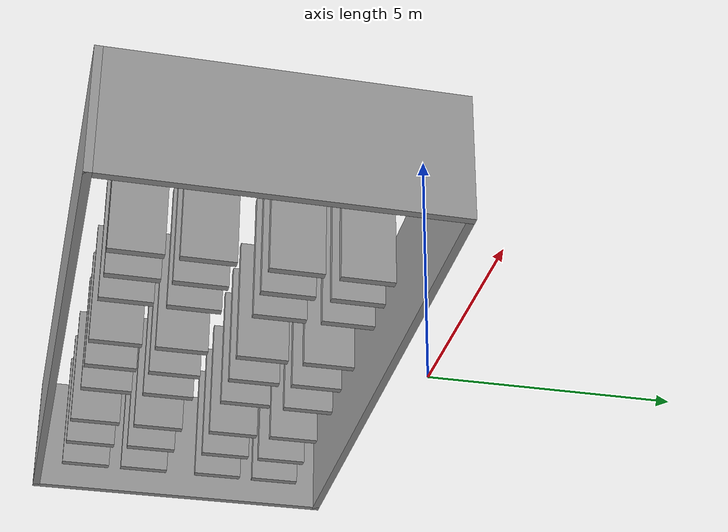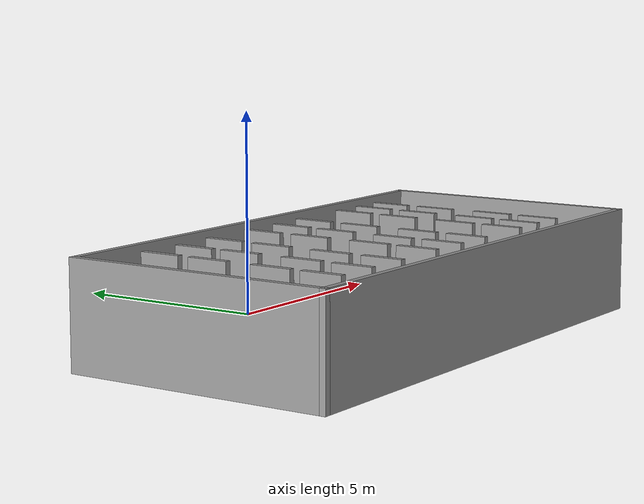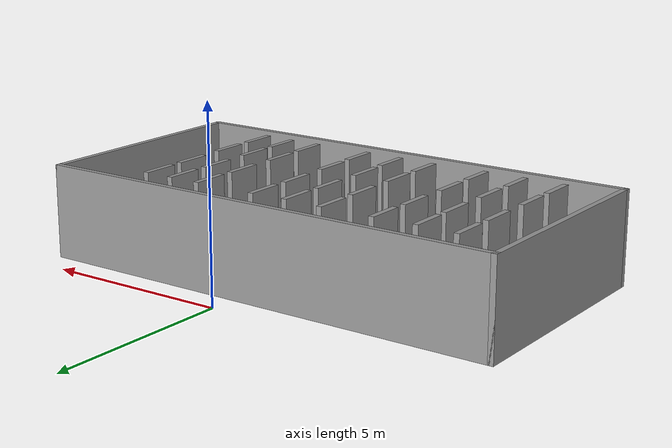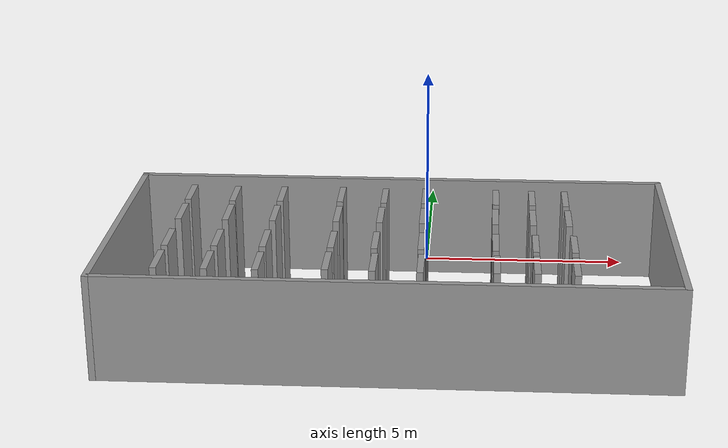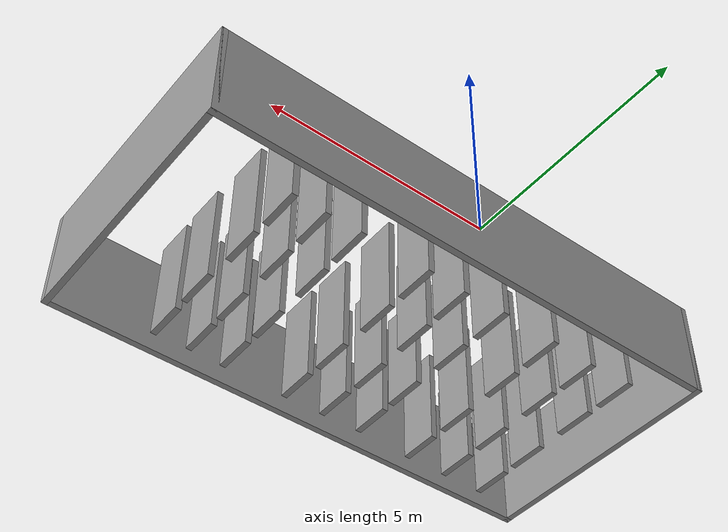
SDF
<?xml version='1.0'?>
<sdf version='1.7'>
  <model name='Warehouse_floor'>
    <pose>-0.675 -3.6025 0 0 -0 0</pose>
    <link name='Wall_1'>
      <collision name='Wall_1_Collision'>
        <geometry>
          <box>
            <size>6.5 0.15 2.5</size>
          </box>
        </geometry>
        <pose>0 0 1.25 0 -0 0</pose>
      </collision>
      <visual name='Wall_1_Visual'>
        <pose>0 0 1.25 0 -0 0</pose>
        <geometry>
          <box>
            <size>6.5 0.15 2.5</size>
          </box>
        </geometry>
        <material>
          <script>
            <uri>file://media/materials/scripts/gazebo.material</uri>
            <name>Gazebo/Grey</name>
          </script>
          <ambient>1 1 1 1</ambient>
        </material>
        <meta>
          <layer>0</layer>
        </meta>
      </visual>
      <pose>-6.425 -0.3525 0 0 -0 1.5708</pose>
    </link>
    <link name='Wall_10'>
      <collision name='Wall_10_Collision'>
        <geometry>
          <box>
            <size>1 0.15 2.5</size>
          </box>
        </geometry>
        <pose>0 0 1.25 0 -0 0</pose>
      </collision>
      <visual name='Wall_10_Visual'>
        <pose>0 0 1.25 0 -0 0</pose>
        <geometry>
          <box>
            <size>1 0.15 2.5</size>
          </box>
        </geometry>
        <material>
          <script>
            <uri>file://media/materials/scripts/gazebo.material</uri>
            <name>Gazebo/Grey</name>
          </script>
          <ambient>1 1 1 1</ambient>
        </material>
        <meta>
          <layer>0</layer>
        </meta>
      </visual>
      <pose>-5.055 -1.2925 0 0 -0 -1.5708</pose>
    </link>
    <link name='Wall_12'>
      <collision name='Wall_12_Collision'>
        <geometry>
          <box>
            <size>1 0.15 2.5</size>
          </box>
        </geometry>
        <pose>0 0 1.25 0 -0 0</pose>
      </collision>
      <visual name='Wall_12_Visual'>
        <pose>0 0 1.25 0 -0 0</pose>
        <geometry>
          <box>
            <size>1 0.15 2.5</size>
          </box>
        </geometry>
        <material>
          <script>
            <uri>file://media/materials/scripts/gazebo.material</uri>
            <name>Gazebo/Grey</name>
          </script>
          <ambient>1 1 1 1</ambient>
        </material>
        <meta>
          <layer>0</layer>
        </meta>
      </visual>
      <pose>-5.065 -2.5525 0 0 -0 1.5708</pose>
    </link>
    <link name='Wall_14'>
      <collision name='Wall_14_Collision'>
        <geometry>
          <box>
            <size>1 0.15 2.5</size>
          </box>
        </geometry>
        <pose>0 0 1.25 0 -0 0</pose>
      </collision>
      <visual name='Wall_14_Visual'>
        <pose>0 0 1.25 0 -0 0</pose>
        <geometry>
          <box>
            <size>1 0.15 2.5</size>
          </box>
        </geometry>
        <material>
          <script>
            <uri>file://media/materials/scripts/gazebo.material</uri>
            <name>Gazebo/Grey</name>
          </script>
          <ambient>1 1 1 1</ambient>
        </material>
        <meta>
          <layer>0</layer>
        </meta>
      </visual>
      <pose>-3.955 1.5475 0 0 -0 1.5708</pose>
    </link>
    <link name='Wall_16'>
      <collision name='Wall_16_Collision'>
        <geometry>
          <box>
            <size>1 0.15 2.5</size>
          </box>
        </geometry>
        <pose>0 0 1.25 0 -0 0</pose>
      </collision>
      <visual name='Wall_16_Visual'>
        <pose>0 0 1.25 0 -0 0</pose>
        <geometry>
          <box>
            <size>1 0.15 2.5</size>
          </box>
        </geometry>
        <material>
          <script>
            <uri>file://media/materials/scripts/gazebo.material</uri>
            <name>Gazebo/Grey</name>
          </script>
          <ambient>1 1 1 1</ambient>
        </material>
        <meta>
          <layer>0</layer>
        </meta>
      </visual>
      <pose>-3.935 0.3275 0 0 -0 -1.5708</pose>
    </link>
    <link name='Wall_18'>
      <collision name='Wall_18_Collision'>
        <geometry>
          <box>
            <size>1 0.15 2.5</size>
          </box>
        </geometry>
        <pose>0 0 1.25 0 -0 0</pose>
      </collision>
      <visual name='Wall_18_Visual'>
        <pose>0 0 1.25 0 -0 0</pose>
        <geometry>
          <box>
            <size>1 0.15 2.5</size>
          </box>
        </geometry>
        <material>
          <script>
            <uri>file://media/materials/scripts/gazebo.material</uri>
            <name>Gazebo/Grey</name>
          </script>
          <ambient>1 1 1 1</ambient>
        </material>
        <meta>
          <layer>0</layer>
        </meta>
      </visual>
      <pose>-3.935 -1.2725 0 0 -0 -1.5708</pose>
    </link>
    <link name='Wall_2'>
      <collision name='Wall_2_Collision'>
        <geometry>
          <box>
            <size>13 0.15 2.5</size>
          </box>
        </geometry>
        <pose>0 0 1.25 0 -0 0</pose>
      </collision>
      <visual name='Wall_2_Visual'>
        <pose>0 0 1.25 0 -0 0</pose>
        <geometry>
          <box>
            <size>13 0.15 2.5</size>
          </box>
        </geometry>
        <material>
          <script>
            <uri>file://media/materials/scripts/gazebo.material</uri>
            <name>Gazebo/Grey</name>
          </script>
          <ambient>1 1 1 1</ambient>
        </material>
        <meta>
          <layer>0</layer>
        </meta>
      </visual>
      <pose>-0 2.8225 0 0 -0 0</pose>
    </link>
    <link name='Wall_20'>
      <collision name='Wall_20_Collision'>
        <geometry>
          <box>
            <size>1 0.15 2.5</size>
          </box>
        </geometry>
        <pose>0 0 1.25 0 -0 0</pose>
      </collision>
      <visual name='Wall_20_Visual'>
        <pose>0 0 1.25 0 -0 0</pose>
        <geometry>
          <box>
            <size>1 0.15 2.5</size>
          </box>
        </geometry>
        <material>
          <script>
            <uri>file://media/materials/scripts/gazebo.material</uri>
            <name>Gazebo/Grey</name>
          </script>
          <ambient>1 1 1 1</ambient>
        </material>
        <meta>
          <layer>0</layer>
        </meta>
      </visual>
      <pose>-3.955 -2.5525 0 0 -0 -1.5708</pose>
    </link>
    <link name='Wall_22'>
      <collision name='Wall_22_Collision'>
        <geometry>
          <box>
            <size>1 0.15 2.5</size>
          </box>
        </geometry>
        <pose>0 0 1.25 0 -0 0</pose>
      </collision>
      <visual name='Wall_22_Visual'>
        <pose>0 0 1.25 0 -0 0</pose>
        <geometry>
          <box>
            <size>1 0.15 2.5</size>
          </box>
        </geometry>
        <material>
          <script>
            <uri>file://media/materials/scripts/gazebo.material</uri>
            <name>Gazebo/Grey</name>
          </script>
          <ambient>1 1 1 1</ambient>
        </material>
        <meta>
          <layer>0</layer>
        </meta>
      </visual>
      <pose>-2.805 1.5975 0 0 -0 -1.5708</pose>
    </link>
    <link name='Wall_24'>
      <collision name='Wall_24_Collision'>
        <geometry>
          <box>
            <size>1 0.15 2.5</size>
          </box>
        </geometry>
        <pose>0 0 1.25 0 -0 0</pose>
      </collision>
      <visual name='Wall_24_Visual'>
        <pose>0 0 1.25 0 -0 0</pose>
        <geometry>
          <box>
            <size>1 0.15 2.5</size>
          </box>
        </geometry>
        <material>
          <script>
            <uri>file://media/materials/scripts/gazebo.material</uri>
            <name>Gazebo/Grey</name>
          </script>
          <ambient>1 1 1 1</ambient>
        </material>
        <meta>
          <layer>0</layer>
        </meta>
      </visual>
      <pose>-2.825 0.3175 0 0 -0 -1.5708</pose>
    </link>
    <link name='Wall_26'>
      <collision name='Wall_26_Collision'>
        <geometry>
          <box>
            <size>1 0.15 2.5</size>
          </box>
        </geometry>
        <pose>0 0 1.25 0 -0 0</pose>
      </collision>
      <visual name='Wall_26_Visual'>
        <pose>0 0 1.25 0 -0 0</pose>
        <geometry>
          <box>
            <size>1 0.15 2.5</size>
          </box>
        </geometry>
        <material>
          <script>
            <uri>file://media/materials/scripts/gazebo.material</uri>
            <name>Gazebo/Grey</name>
          </script>
          <ambient>1 1 1 1</ambient>
        </material>
        <meta>
          <layer>0</layer>
        </meta>
      </visual>
      <pose>-2.845 -1.2525 0 0 -0 -1.5708</pose>
    </link>
    <link name='Wall_28'>
      <collision name='Wall_28_Collision'>
        <geometry>
          <box>
            <size>1 0.15 2.5</size>
          </box>
        </geometry>
        <pose>0 0 1.25 0 -0 0</pose>
      </collision>
      <visual name='Wall_28_Visual'>
        <pose>0 0 1.25 0 -0 0</pose>
        <geometry>
          <box>
            <size>1 0.15 2.5</size>
          </box>
        </geometry>
        <material>
          <script>
            <uri>file://media/materials/scripts/gazebo.material</uri>
            <name>Gazebo/Grey</name>
          </script>
          <ambient>1 1 1 1</ambient>
        </material>
        <meta>
          <layer>0</layer>
        </meta>
      </visual>
      <pose>-2.835 -2.5525 0 0 -0 -1.5708</pose>
    </link>
    <link name='Wall_3'>
      <collision name='Wall_3_Collision'>
        <geometry>
          <box>
            <size>6.5 0.15 2.5</size>
          </box>
        </geometry>
        <pose>0 0 1.25 0 -0 0</pose>
      </collision>
      <visual name='Wall_3_Visual'>
        <pose>0 0 1.25 0 -0 0</pose>
        <geometry>
          <box>
            <size>6.5 0.15 2.5</size>
          </box>
        </geometry>
        <material>
          <script>
            <uri>file://media/materials/scripts/gazebo.material</uri>
            <name>Gazebo/Grey</name>
          </script>
          <ambient>1 1 1 1</ambient>
        </material>
        <meta>
          <layer>0</layer>
        </meta>
      </visual>
      <pose>6.425 -0.3525 0 0 -0 -1.5708</pose>
    </link>
    <link name='Wall_30'>
      <collision name='Wall_30_Collision'>
        <geometry>
          <box>
            <size>1 0.15 2.5</size>
          </box>
        </geometry>
        <pose>0 0 1.25 0 -0 0</pose>
      </collision>
      <visual name='Wall_30_Visual'>
        <pose>0 0 1.25 0 -0 0</pose>
        <geometry>
          <box>
            <size>1 0.15 2.5</size>
          </box>
        </geometry>
        <material>
          <script>
            <uri>file://media/materials/scripts/gazebo.material</uri>
            <name>Gazebo/Grey</name>
          </script>
          <ambient>1 1 1 1</ambient>
        </material>
        <meta>
          <layer>0</layer>
        </meta>
      </visual>
      <pose>-1.355 1.6175 0 0 -0 -1.5708</pose>
    </link>
    <link name='Wall_34'>
      <collision name='Wall_34_Collision'>
        <geometry>
          <box>
            <size>1 0.15 2.5</size>
          </box>
        </geometry>
        <pose>0 0 1.25 0 -0 0</pose>
      </collision>
      <visual name='Wall_34_Visual'>
        <pose>0 0 1.25 0 -0 0</pose>
        <geometry>
          <box>
            <size>1 0.15 2.5</size>
          </box>
        </geometry>
        <material>
          <script>
            <uri>file://media/materials/scripts/gazebo.material</uri>
            <name>Gazebo/Grey</name>
          </script>
          <ambient>1 1 1 1</ambient>
        </material>
        <meta>
          <layer>0</layer>
        </meta>
      </visual>
      <pose>-1.335 0.3275 0 0 -0 -1.5708</pose>
    </link>
    <link name='Wall_36'>
      <collision name='Wall_36_Collision'>
        <geometry>
          <box>
            <size>1 0.15 2.5</size>
          </box>
        </geometry>
        <pose>0 0 1.25 0 -0 0</pose>
      </collision>
      <visual name='Wall_36_Visual'>
        <pose>0 0 1.25 0 -0 0</pose>
        <geometry>
          <box>
            <size>1 0.15 2.5</size>
          </box>
        </geometry>
        <material>
          <script>
            <uri>file://media/materials/scripts/gazebo.material</uri>
            <name>Gazebo/Grey</name>
          </script>
          <ambient>1 1 1 1</ambient>
        </material>
        <meta>
          <layer>0</layer>
        </meta>
      </visual>
      <pose>-0.315 0.3275 0 0 -0 -1.5708</pose>
    </link>
    <link name='Wall_38'>
      <collision name='Wall_38_Collision'>
        <geometry>
          <box>
            <size>1 0.15 2.5</size>
          </box>
        </geometry>
        <pose>0 0 1.25 0 -0 0</pose>
      </collision>
      <visual name='Wall_38_Visual'>
        <pose>0 0 1.25 0 -0 0</pose>
        <geometry>
          <box>
            <size>1 0.15 2.5</size>
          </box>
        </geometry>
        <material>
          <script>
            <uri>file://media/materials/scripts/gazebo.material</uri>
            <name>Gazebo/Grey</name>
          </script>
          <ambient>1 1 1 1</ambient>
        </material>
        <meta>
          <layer>0</layer>
        </meta>
      </visual>
      <pose>0.685 0.3175 0 0 -0 -1.5708</pose>
    </link>
    <link name='Wall_4'>
      <collision name='Wall_4_Collision'>
        <geometry>
          <box>
            <size>13 0.15 2.5</size>
          </box>
        </geometry>
        <pose>0 0 1.25 0 -0 0</pose>
      </collision>
      <visual name='Wall_4_Visual'>
        <pose>0 0 1.25 0 -0 0</pose>
        <geometry>
          <box>
            <size>13 0.15 2.5</size>
          </box>
        </geometry>
        <material>
          <script>
            <uri>file://media/materials/scripts/gazebo.material</uri>
            <name>Gazebo/Grey</name>
          </script>
          <ambient>1 1 1 1</ambient>
        </material>
        <meta>
          <layer>0</layer>
        </meta>
      </visual>
      <pose>-0 -3.5275 0 0 -0 3.14159</pose>
    </link>
    <link name='Wall_40'>
      <collision name='Wall_40_Collision'>
        <geometry>
          <box>
            <size>1 0.15 2.5</size>
          </box>
        </geometry>
        <pose>0 0 1.25 0 -0 0</pose>
      </collision>
      <visual name='Wall_40_Visual'>
        <pose>0 0 1.25 0 -0 0</pose>
        <geometry>
          <box>
            <size>1 0.15 2.5</size>
          </box>
        </geometry>
        <material>
          <script>
            <uri>file://media/materials/scripts/gazebo.material</uri>
            <name>Gazebo/Grey</name>
          </script>
          <ambient>1 1 1 1</ambient>
        </material>
        <meta>
          <layer>0</layer>
        </meta>
      </visual>
      <pose>2.385 0.3375 0 0 -0 -1.5708</pose>
    </link>
    <link name='Wall_42'>
      <collision name='Wall_42_Collision'>
        <geometry>
          <box>
            <size>1 0.15 2.5</size>
          </box>
        </geometry>
        <pose>0 0 1.25 0 -0 0</pose>
      </collision>
      <visual name='Wall_42_Visual'>
        <pose>0 0 1.25 0 -0 0</pose>
        <geometry>
          <box>
            <size>1 0.15 2.5</size>
          </box>
        </geometry>
        <material>
          <script>
            <uri>file://media/materials/scripts/gazebo.material</uri>
            <name>Gazebo/Grey</name>
          </script>
          <ambient>1 1 1 1</ambient>
        </material>
        <meta>
          <layer>0</layer>
        </meta>
      </visual>
      <pose>3.265 0.3275 0 0 -0 -1.5708</pose>
    </link>
    <link name='Wall_44'>
      <collision name='Wall_44_Collision'>
        <geometry>
          <box>
            <size>1 0.15 2.5</size>
          </box>
        </geometry>
        <pose>0 0 1.25 0 -0 0</pose>
      </collision>
      <visual name='Wall_44_Visual'>
        <pose>0 0 1.25 0 -0 0</pose>
        <geometry>
          <box>
            <size>1 0.15 2.5</size>
          </box>
        </geometry>
        <material>
          <script>
            <uri>file://media/materials/scripts/gazebo.material</uri>
            <name>Gazebo/Grey</name>
          </script>
          <ambient>1 1 1 1</ambient>
        </material>
        <meta>
          <layer>0</layer>
        </meta>
      </visual>
      <pose>4.095 0.3275 0 0 -0 -1.5708</pose>
    </link>
    <link name='Wall_49'>
      <collision name='Wall_49_Collision'>
        <geometry>
          <box>
            <size>1 0.15 2.5</size>
          </box>
        </geometry>
        <pose>0 0 1.25 0 -0 0</pose>
      </collision>
      <visual name='Wall_49_Visual'>
        <pose>0 0 1.25 0 -0 0</pose>
        <geometry>
          <box>
            <size>1 0.15 2.5</size>
          </box>
        </geometry>
        <material>
          <script>
            <uri>file://media/materials/scripts/gazebo.material</uri>
            <name>Gazebo/Grey</name>
          </script>
          <ambient>1 1 1 1</ambient>
        </material>
        <meta>
          <layer>0</layer>
        </meta>
      </visual>
      <pose>-1.325 -2.4725 0 0 -0 -1.5708</pose>
    </link>
    <link name='Wall_51'>
      <collision name='Wall_51_Collision'>
        <geometry>
          <box>
            <size>1 0.15 2.5</size>
          </box>
        </geometry>
        <pose>0 0 1.25 0 -0 0</pose>
      </collision>
      <visual name='Wall_51_Visual'>
        <pose>0 0 1.25 0 -0 0</pose>
        <geometry>
          <box>
            <size>1 0.15 2.5</size>
          </box>
        </geometry>
        <material>
          <script>
            <uri>file://media/materials/scripts/gazebo.material</uri>
            <name>Gazebo/Grey</name>
          </script>
          <ambient>1 1 1 1</ambient>
        </material>
        <meta>
          <layer>0</layer>
        </meta>
      </visual>
      <pose>-0.295 -2.4925 0 0 -0 -1.5708</pose>
    </link>
    <link name='Wall_53'>
      <collision name='Wall_53_Collision'>
        <geometry>
          <box>
            <size>1 0.15 2.5</size>
          </box>
        </geometry>
        <pose>0 0 1.25 0 -0 0</pose>
      </collision>
      <visual name='Wall_53_Visual'>
        <pose>0 0 1.25 0 -0 0</pose>
        <geometry>
          <box>
            <size>1 0.15 2.5</size>
          </box>
        </geometry>
        <material>
          <script>
            <uri>file://media/materials/scripts/gazebo.material</uri>
            <name>Gazebo/Grey</name>
          </script>
          <ambient>1 1 1 1</ambient>
        </material>
        <meta>
          <layer>0</layer>
        </meta>
      </visual>
      <pose>0.745 -2.5025 0 0 -0 -1.5708</pose>
    </link>
    <link name='Wall_55'>
      <collision name='Wall_55_Collision'>
        <geometry>
          <box>
            <size>1 0.15 2.5</size>
          </box>
        </geometry>
        <pose>0 0 1.25 0 -0 0</pose>
      </collision>
      <visual name='Wall_55_Visual'>
        <pose>0 0 1.25 0 -0 0</pose>
        <geometry>
          <box>
            <size>1 0.15 2.5</size>
          </box>
        </geometry>
        <material>
          <script>
            <uri>file://media/materials/scripts/gazebo.material</uri>
            <name>Gazebo/Grey</name>
          </script>
          <ambient>1 1 1 1</ambient>
        </material>
        <meta>
          <layer>0</layer>
        </meta>
      </visual>
      <pose>2.405 -2.4825 0 0 -0 -1.5708</pose>
    </link>
    <link name='Wall_57'>
      <collision name='Wall_57_Collision'>
        <geometry>
          <box>
            <size>1 0.15 2.5</size>
          </box>
        </geometry>
        <pose>0 0 1.25 0 -0 0</pose>
      </collision>
      <visual name='Wall_57_Visual'>
        <pose>0 0 1.25 0 -0 0</pose>
        <geometry>
          <box>
            <size>1 0.15 2.5</size>
          </box>
        </geometry>
        <material>
          <script>
            <uri>file://media/materials/scripts/gazebo.material</uri>
            <name>Gazebo/Grey</name>
          </script>
          <ambient>1 1 1 1</ambient>
        </material>
        <meta>
          <layer>0</layer>
        </meta>
      </visual>
      <pose>3.285 -2.4625 0 0 -0 -1.5708</pose>
    </link>
    <link name='Wall_59'>
      <collision name='Wall_59_Collision'>
        <geometry>
          <box>
            <size>1 0.15 2.5</size>
          </box>
        </geometry>
        <pose>0 0 1.25 0 -0 0</pose>
      </collision>
      <visual name='Wall_59_Visual'>
        <pose>0 0 1.25 0 -0 0</pose>
        <geometry>
          <box>
            <size>1 0.15 2.5</size>
          </box>
        </geometry>
        <material>
          <script>
            <uri>file://media/materials/scripts/gazebo.material</uri>
            <name>Gazebo/Grey</name>
          </script>
          <ambient>1 1 1 1</ambient>
        </material>
        <meta>
          <layer>0</layer>
        </meta>
      </visual>
      <pose>4.145 -2.5025 0 0 -0 -1.5708</pose>
    </link>
    <link name='Wall_6'>
      <collision name='Wall_6_Collision'>
        <geometry>
          <box>
            <size>1 0.15 2.5</size>
          </box>
        </geometry>
        <pose>0 0 1.25 0 -0 0</pose>
      </collision>
      <visual name='Wall_6_Visual'>
        <pose>0 0 1.25 0 -0 0</pose>
        <geometry>
          <box>
            <size>1 0.15 2.5</size>
          </box>
        </geometry>
        <material>
          <script>
            <uri>file://media/materials/scripts/gazebo.material</uri>
            <name>Gazebo/Grey</name>
          </script>
          <ambient>1 1 1 1</ambient>
        </material>
        <meta>
          <layer>0</layer>
        </meta>
      </visual>
      <pose>-5.045 1.5975 0 0 -0 -1.5708</pose>
    </link>
    <link name='Wall_61'>
      <collision name='Wall_61_Collision'>
        <geometry>
          <box>
            <size>1 0.15 2.5</size>
          </box>
        </geometry>
        <pose>0 0 1.25 0 -0 0</pose>
      </collision>
      <visual name='Wall_61_Visual'>
        <pose>0 0 1.25 0 -0 0</pose>
        <geometry>
          <box>
            <size>1 0.15 2.5</size>
          </box>
        </geometry>
        <material>
          <script>
            <uri>file://media/materials/scripts/gazebo.material</uri>
            <name>Gazebo/Grey</name>
          </script>
          <ambient>1 1 1 1</ambient>
        </material>
        <meta>
          <layer>0</layer>
        </meta>
      </visual>
      <pose>-0.295 1.5775 0 0 -0 1.5708</pose>
    </link>
    <link name='Wall_64'>
      <collision name='Wall_64_Collision'>
        <geometry>
          <box>
            <size>1 0.15 2.5</size>
          </box>
        </geometry>
        <pose>0 0 1.25 0 -0 0</pose>
      </collision>
      <visual name='Wall_64_Visual'>
        <pose>0 0 1.25 0 -0 0</pose>
        <geometry>
          <box>
            <size>1 0.15 2.5</size>
          </box>
        </geometry>
        <material>
          <script>
            <uri>file://media/materials/scripts/gazebo.material</uri>
            <name>Gazebo/Grey</name>
          </script>
          <ambient>1 1 1 1</ambient>
        </material>
        <meta>
          <layer>0</layer>
        </meta>
      </visual>
      <pose>0.685 1.6175 0 0 -0 -1.5708</pose>
    </link>
    <link name='Wall_66'>
      <collision name='Wall_66_Collision'>
        <geometry>
          <box>
            <size>1 0.15 2.5</size>
          </box>
        </geometry>
        <pose>0 0 1.25 0 -0 0</pose>
      </collision>
      <visual name='Wall_66_Visual'>
        <pose>0 0 1.25 0 -0 0</pose>
        <geometry>
          <box>
            <size>1 0.15 2.5</size>
          </box>
        </geometry>
        <material>
          <script>
            <uri>file://media/materials/scripts/gazebo.material</uri>
            <name>Gazebo/Grey</name>
          </script>
          <ambient>1 1 1 1</ambient>
        </material>
        <meta>
          <layer>0</layer>
        </meta>
      </visual>
      <pose>2.405 1.6175 0 0 -0 1.5708</pose>
    </link>
    <link name='Wall_68'>
      <collision name='Wall_68_Collision'>
        <geometry>
          <box>
            <size>1 0.15 2.5</size>
          </box>
        </geometry>
        <pose>0 0 1.25 0 -0 0</pose>
      </collision>
      <visual name='Wall_68_Visual'>
        <pose>0 0 1.25 0 -0 0</pose>
        <geometry>
          <box>
            <size>1 0.15 2.5</size>
          </box>
        </geometry>
        <material>
          <script>
            <uri>file://media/materials/scripts/gazebo.material</uri>
            <name>Gazebo/Grey</name>
          </script>
          <ambient>1 1 1 1</ambient>
        </material>
        <meta>
          <layer>0</layer>
        </meta>
      </visual>
      <pose>3.275 1.6075 0 0 -0 -1.5708</pose>
    </link>
    <link name='Wall_70'>
      <collision name='Wall_70_Collision'>
        <geometry>
          <box>
            <size>1 0.15 2.5</size>
          </box>
        </geometry>
        <pose>0 0 1.25 0 -0 0</pose>
      </collision>
      <visual name='Wall_70_Visual'>
        <pose>0 0 1.25 0 -0 0</pose>
        <geometry>
          <box>
            <size>1 0.15 2.5</size>
          </box>
        </geometry>
        <material>
          <script>
            <uri>file://media/materials/scripts/gazebo.material</uri>
            <name>Gazebo/Grey</name>
          </script>
          <ambient>1 1 1 1</ambient>
        </material>
        <meta>
          <layer>0</layer>
        </meta>
      </visual>
      <pose>4.075 1.6075 0 0 -0 -1.5708</pose>
    </link>
    <link name='Wall_74'>
      <collision name='Wall_74_Collision'>
        <geometry>
          <box>
            <size>1 0.15 2.5</size>
          </box>
        </geometry>
        <pose>0 0 1.25 0 -0 0</pose>
      </collision>
      <visual name='Wall_74_Visual'>
        <pose>0 0 1.25 0 -0 0</pose>
        <geometry>
          <box>
            <size>1 0.15 2.5</size>
          </box>
        </geometry>
        <material>
          <script>
            <uri>file://media/materials/scripts/gazebo.material</uri>
            <name>Gazebo/Grey</name>
          </script>
          <ambient>1 1 1 1</ambient>
        </material>
        <meta>
          <layer>0</layer>
        </meta>
      </visual>
      <pose>-1.315 -1.2425 0 0 -0 -1.5708</pose>
    </link>
    <link name='Wall_76'>
      <collision name='Wall_76_Collision'>
        <geometry>
          <box>
            <size>1 0.15 2.5</size>
          </box>
        </geometry>
        <pose>0 0 1.25 0 -0 0</pose>
      </collision>
      <visual name='Wall_76_Visual'>
        <pose>0 0 1.25 0 -0 0</pose>
        <geometry>
          <box>
            <size>1 0.15 2.5</size>
          </box>
        </geometry>
        <material>
          <script>
            <uri>file://media/materials/scripts/gazebo.material</uri>
            <name>Gazebo/Grey</name>
          </script>
          <ambient>1 1 1 1</ambient>
        </material>
        <meta>
          <layer>0</layer>
        </meta>
      </visual>
      <pose>-0.335 -1.2425 0 0 -0 -1.5708</pose>
    </link>
    <link name='Wall_78'>
      <collision name='Wall_78_Collision'>
        <geometry>
          <box>
            <size>1 0.15 2.5</size>
          </box>
        </geometry>
        <pose>0 0 1.25 0 -0 0</pose>
      </collision>
      <visual name='Wall_78_Visual'>
        <pose>0 0 1.25 0 -0 0</pose>
        <geometry>
          <box>
            <size>1 0.15 2.5</size>
          </box>
        </geometry>
        <material>
          <script>
            <uri>file://media/materials/scripts/gazebo.material</uri>
            <name>Gazebo/Grey</name>
          </script>
          <ambient>1 1 1 1</ambient>
        </material>
        <meta>
          <layer>0</layer>
        </meta>
      </visual>
      <pose>0.715 -1.2425 0 0 -0 -1.5708</pose>
    </link>
    <link name='Wall_8'>
      <collision name='Wall_8_Collision'>
        <geometry>
          <box>
            <size>1 0.15 2.5</size>
          </box>
        </geometry>
        <pose>0 0 1.25 0 -0 0</pose>
      </collision>
      <visual name='Wall_8_Visual'>
        <pose>0 0 1.25 0 -0 0</pose>
        <geometry>
          <box>
            <size>1 0.15 2.5</size>
          </box>
        </geometry>
        <material>
          <script>
            <uri>file://media/materials/scripts/gazebo.material</uri>
            <name>Gazebo/Grey</name>
          </script>
          <ambient>1 1 1 1</ambient>
        </material>
        <meta>
          <layer>0</layer>
        </meta>
      </visual>
      <pose>-5.045 0.3275 0 0 -0 -1.5708</pose>
    </link>
    <link name='Wall_80'>
      <collision name='Wall_80_Collision'>
        <geometry>
          <box>
            <size>1 0.15 2.5</size>
          </box>
        </geometry>
        <pose>0 0 1.25 0 -0 0</pose>
      </collision>
      <visual name='Wall_80_Visual'>
        <pose>0 0 1.25 0 -0 0</pose>
        <geometry>
          <box>
            <size>1 0.15 2.5</size>
          </box>
        </geometry>
        <material>
          <script>
            <uri>file://media/materials/scripts/gazebo.material</uri>
            <name>Gazebo/Grey</name>
          </script>
          <ambient>1 1 1 1</ambient>
        </material>
        <meta>
          <layer>0</layer>
        </meta>
      </visual>
      <pose>2.385 -1.2425 0 0 -0 -1.5708</pose>
    </link>
    <link name='Wall_82'>
      <collision name='Wall_82_Collision'>
        <geometry>
          <box>
            <size>1 0.15 2.5</size>
          </box>
        </geometry>
        <pose>0 0 1.25 0 -0 0</pose>
      </collision>
      <visual name='Wall_82_Visual'>
        <pose>0 0 1.25 0 -0 0</pose>
        <geometry>
          <box>
            <size>1 0.15 2.5</size>
          </box>
        </geometry>
        <material>
          <script>
            <uri>file://media/materials/scripts/gazebo.material</uri>
            <name>Gazebo/Grey</name>
          </script>
          <ambient>1 1 1 1</ambient>
        </material>
        <meta>
          <layer>0</layer>
        </meta>
      </visual>
      <pose>3.285 -1.2525 0 0 -0 -1.5708</pose>
    </link>
    <link name='Wall_84'>
      <collision name='Wall_84_Collision'>
        <geometry>
          <box>
            <size>1 0.15 2.5</size>
          </box>
        </geometry>
        <pose>0 0 1.25 0 -0 0</pose>
      </collision>
      <visual name='Wall_84_Visual'>
        <pose>0 0 1.25 0 -0 0</pose>
        <geometry>
          <box>
            <size>1 0.15 2.5</size>
          </box>
        </geometry>
        <material>
          <script>
            <uri>file://media/materials/scripts/gazebo.material</uri>
            <name>Gazebo/Grey</name>
          </script>
          <ambient>1 1 1 1</ambient>
        </material>
        <meta>
          <layer>0</layer>
        </meta>
      </visual>
      <pose>4.155 -1.2425 0 0 -0 -1.5708</pose>
    </link>
    <static>1</static>
  </model>
</sdf>
